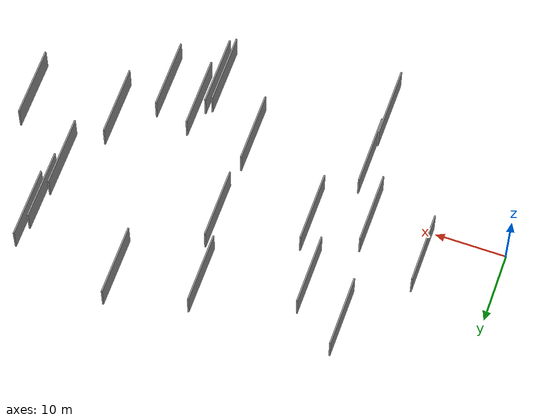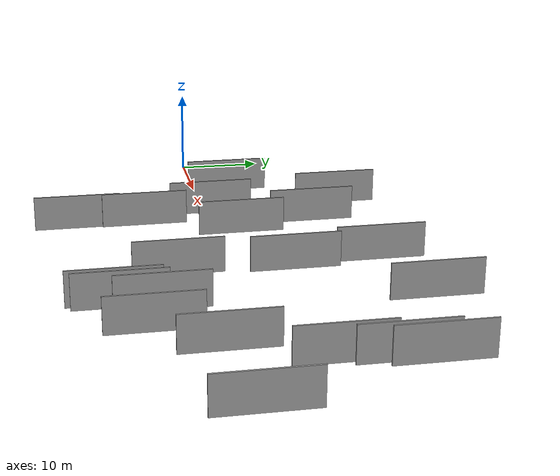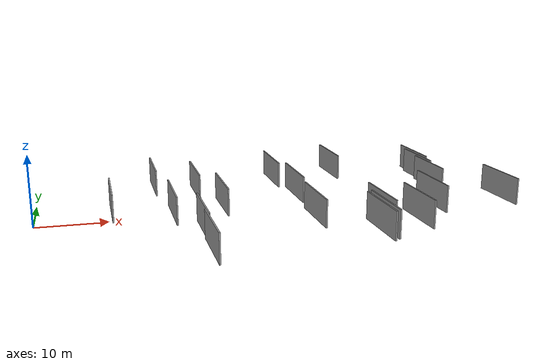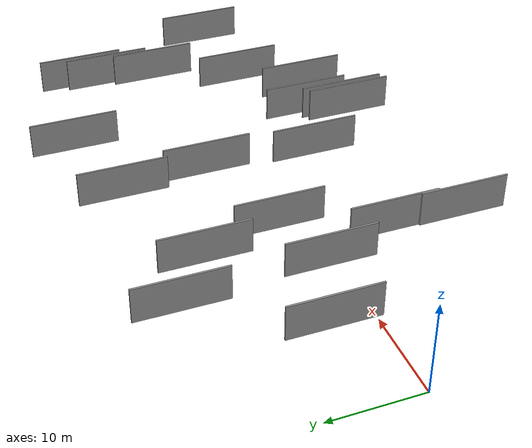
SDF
<sdf version="1.6">
 <world name="default">
  <scene>
   <sky><clouds><speed>12</speed></clouds></sky>
   <ambient>0.4 0.4 0.4 1</ambient>
   <background>0.7 0.7 0.7 1</background>
   <shadows>1</shadows>
  </scene>
  <gravity>0 0 -9.8066</gravity>
  <magnetic_field>6e-06 2.3e-05 -4.2e-05</magnetic_field>
  <physics default="0" name="default_physics" type="ode">
   <ode>
    <solver>
     <type>quick</type>
     <iters>10</iters>
     <sor>1.0</sor>
     <use_dynamic_moi_rescaling>0</use_dynamic_moi_rescaling>
    </solver>
    <constraints>
     <cfm>0</cfm>
     <erp>0.2</erp>
     <contact_max_correcting_vel>100</contact_max_correcting_vel>
     <contact_surface_layer>0.001</contact_surface_layer>
    </constraints>
   </ode>
   <max_step_size>0.004</max_step_size>
   <real_time_factor>1</real_time_factor>
   <real_time_update_rate>250</real_time_update_rate>
  </physics>
  <light name="sun" type="directional">
   <pose>0 0 10 0 0 0</pose>
   <diffuse>0.8 0.8 0.8 1</diffuse>
   <specular>0.2 0.2 0.2 1</specular>
   <attenuation>
    <range>1000</range>
    <constant>0.9</constant>
    <linear>0.01</linear>
    <quadratic>0.001</quadratic>
   </attenuation>
   <direction>-0.5 0.1 -0.9</direction>
  </light>
  <model name="grey_wall_1">
   <static>1</static>
   <pose>23.8907 12.3705 0.0 0.000000 0.000000 1.570796</pose>
   <link name="link">
    <pose>0 0 2.00 0 0 0</pose>
    <collision name="collision"><geometry><box><size>10.00 0.2 4.00</size></box></geometry></collision>
    <visual name="visual">
     <cast_shadows>0</cast_shadows>
     <geometry><box><size>10.00 0.2 4.00</size></box></geometry>
     <material>
      <script>
       <uri>model://grey_wall/materials/scripts</uri>
       <uri>model://grey_wall/materials/textures</uri>
       <name>vrc/grey_wall</name>
      </script>
     </material>
    </visual>
   </link>
  </model>
  <model name="grey_wall_2">
   <static>1</static>
   <pose>38.1678 -5.4554 0.0 0.000000 0.000000 1.570796</pose>
   <link name="link">
    <pose>0 0 2.00 0 0 0</pose>
    <collision name="collision"><geometry><box><size>10.00 0.2 4.00</size></box></geometry></collision>
    <visual name="visual">
     <cast_shadows>0</cast_shadows>
     <geometry><box><size>10.00 0.2 4.00</size></box></geometry>
     <material>
      <script>
       <uri>model://grey_wall/materials/scripts</uri>
       <uri>model://grey_wall/materials/textures</uri>
       <name>vrc/grey_wall</name>
      </script>
     </material>
    </visual>
   </link>
  </model>
  <model name="grey_wall_3">
   <static>1</static>
   <pose>45.8196 -12.2393 0.0 0.000000 0.000000 1.570796</pose>
   <link name="link">
    <pose>0 0 2.00 0 0 0</pose>
    <collision name="collision"><geometry><box><size>10.00 0.2 4.00</size></box></geometry></collision>
    <visual name="visual">
     <cast_shadows>0</cast_shadows>
     <geometry><box><size>10.00 0.2 4.00</size></box></geometry>
     <material>
      <script>
       <uri>model://grey_wall/materials/scripts</uri>
       <uri>model://grey_wall/materials/textures</uri>
       <name>vrc/grey_wall</name>
      </script>
     </material>
    </visual>
   </link>
  </model>
  <model name="grey_wall_4">
   <static>1</static>
   <pose>52.0283 -9.4851 0.0 0.000000 0.000000 1.570796</pose>
   <link name="link">
    <pose>0 0 2.00 0 0 0</pose>
    <collision name="collision"><geometry><box><size>10.00 0.2 4.00</size></box></geometry></collision>
    <visual name="visual">
     <cast_shadows>0</cast_shadows>
     <geometry><box><size>10.00 0.2 4.00</size></box></geometry>
     <material>
      <script>
       <uri>model://grey_wall/materials/scripts</uri>
       <uri>model://grey_wall/materials/textures</uri>
       <name>vrc/grey_wall</name>
      </script>
     </material>
    </visual>
   </link>
  </model>
  <model name="grey_wall_5">
   <static>1</static>
   <pose>18.9541 0.8942 0.0 0.000000 0.000000 1.570796</pose>
   <link name="link">
    <pose>0 0 2.00 0 0 0</pose>
    <collision name="collision"><geometry><box><size>10.00 0.2 4.00</size></box></geometry></collision>
    <visual name="visual">
     <cast_shadows>0</cast_shadows>
     <geometry><box><size>10.00 0.2 4.00</size></box></geometry>
     <material>
      <script>
       <uri>model://grey_wall/materials/scripts</uri>
       <uri>model://grey_wall/materials/textures</uri>
       <name>vrc/grey_wall</name>
      </script>
     </material>
    </visual>
   </link>
  </model>
  <model name="grey_wall_6">
   <static>1</static>
   <pose>57.2342 -3.0763 0.0 0.000000 0.000000 1.570796</pose>
   <link name="link">
    <pose>0 0 2.00 0 0 0</pose>
    <collision name="collision"><geometry><box><size>10.00 0.2 4.00</size></box></geometry></collision>
    <visual name="visual">
     <cast_shadows>0</cast_shadows>
     <geometry><box><size>10.00 0.2 4.00</size></box></geometry>
     <material>
      <script>
       <uri>model://grey_wall/materials/scripts</uri>
       <uri>model://grey_wall/materials/textures</uri>
       <name>vrc/grey_wall</name>
      </script>
     </material>
    </visual>
   </link>
  </model>
  <model name="grey_wall_7">
   <static>1</static>
   <pose>45.0174 -12.7938 0.0 0.000000 0.000000 1.570796</pose>
   <link name="link">
    <pose>0 0 2.00 0 0 0</pose>
    <collision name="collision"><geometry><box><size>10.00 0.2 4.00</size></box></geometry></collision>
    <visual name="visual">
     <cast_shadows>0</cast_shadows>
     <geometry><box><size>10.00 0.2 4.00</size></box></geometry>
     <material>
      <script>
       <uri>model://grey_wall/materials/scripts</uri>
       <uri>model://grey_wall/materials/textures</uri>
       <name>vrc/grey_wall</name>
      </script>
     </material>
    </visual>
   </link>
  </model>
  <model name="grey_wall_8">
   <static>1</static>
   <pose>47.0520 -8.1262 0.0 0.000000 0.000000 1.570796</pose>
   <link name="link">
    <pose>0 0 2.00 0 0 0</pose>
    <collision name="collision"><geometry><box><size>10.00 0.2 4.00</size></box></geometry></collision>
    <visual name="visual">
     <cast_shadows>0</cast_shadows>
     <geometry><box><size>10.00 0.2 4.00</size></box></geometry>
     <material>
      <script>
       <uri>model://grey_wall/materials/scripts</uri>
       <uri>model://grey_wall/materials/textures</uri>
       <name>vrc/grey_wall</name>
      </script>
     </material>
    </visual>
   </link>
  </model>
  <model name="grey_wall_9">
   <static>1</static>
   <pose>69.2798 -1.9915 0.0 0.000000 0.000000 1.570796</pose>
   <link name="link">
    <pose>0 0 2.00 0 0 0</pose>
    <collision name="collision"><geometry><box><size>10.00 0.2 4.00</size></box></geometry></collision>
    <visual name="visual">
     <cast_shadows>0</cast_shadows>
     <geometry><box><size>10.00 0.2 4.00</size></box></geometry>
     <material>
      <script>
       <uri>model://grey_wall/materials/scripts</uri>
       <uri>model://grey_wall/materials/textures</uri>
       <name>vrc/grey_wall</name>
      </script>
     </material>
    </visual>
   </link>
  </model>
  <model name="grey_wall_10">
   <static>1</static>
   <pose>26.5425 3.3984 0.0 0.000000 0.000000 1.570796</pose>
   <link name="link">
    <pose>0 0 2.00 0 0 0</pose>
    <collision name="collision"><geometry><box><size>10.00 0.2 4.00</size></box></geometry></collision>
    <visual name="visual">
     <cast_shadows>0</cast_shadows>
     <geometry><box><size>10.00 0.2 4.00</size></box></geometry>
     <material>
      <script>
       <uri>model://grey_wall/materials/scripts</uri>
       <uri>model://grey_wall/materials/textures</uri>
       <name>vrc/grey_wall</name>
      </script>
     </material>
    </visual>
   </link>
  </model>
  <model name="grey_wall_11">
   <static>1</static>
   <pose>62.2012 12.4944 0.0 0.000000 0.000000 1.570796</pose>
   <link name="link">
    <pose>0 0 2.00 0 0 0</pose>
    <collision name="collision"><geometry><box><size>10.00 0.2 4.00</size></box></geometry></collision>
    <visual name="visual">
     <cast_shadows>0</cast_shadows>
     <geometry><box><size>10.00 0.2 4.00</size></box></geometry>
     <material>
      <script>
       <uri>model://grey_wall/materials/scripts</uri>
       <uri>model://grey_wall/materials/textures</uri>
       <name>vrc/grey_wall</name>
      </script>
     </material>
    </visual>
   </link>
  </model>
  <model name="grey_wall_12">
   <static>1</static>
   <pose>48.7458 19.7662 0.0 0.000000 0.000000 1.570796</pose>
   <link name="link">
    <pose>0 0 2.00 0 0 0</pose>
    <collision name="collision"><geometry><box><size>10.00 0.2 4.00</size></box></geometry></collision>
    <visual name="visual">
     <cast_shadows>0</cast_shadows>
     <geometry><box><size>10.00 0.2 4.00</size></box></geometry>
     <material>
      <script>
       <uri>model://grey_wall/materials/scripts</uri>
       <uri>model://grey_wall/materials/textures</uri>
       <name>vrc/grey_wall</name>
      </script>
     </material>
    </visual>
   </link>
  </model>
  <model name="grey_wall_13">
   <static>1</static>
   <pose>17.7763 16.7626 0.0 0.000000 0.000000 1.570796</pose>
   <link name="link">
    <pose>0 0 2.00 0 0 0</pose>
    <collision name="collision"><geometry><box><size>10.00 0.2 4.00</size></box></geometry></collision>
    <visual name="visual">
     <cast_shadows>0</cast_shadows>
     <geometry><box><size>10.00 0.2 4.00</size></box></geometry>
     <material>
      <script>
       <uri>model://grey_wall/materials/scripts</uri>
       <uri>model://grey_wall/materials/textures</uri>
       <name>vrc/grey_wall</name>
      </script>
     </material>
    </visual>
   </link>
  </model>
  <model name="grey_wall_14">
   <static>1</static>
   <pose>62.9696 15.6375 0.0 0.000000 0.000000 1.570796</pose>
   <link name="link">
    <pose>0 0 2.00 0 0 0</pose>
    <collision name="collision"><geometry><box><size>10.00 0.2 4.00</size></box></geometry></collision>
    <visual name="visual">
     <cast_shadows>0</cast_shadows>
     <geometry><box><size>10.00 0.2 4.00</size></box></geometry>
     <material>
      <script>
       <uri>model://grey_wall/materials/scripts</uri>
       <uri>model://grey_wall/materials/textures</uri>
       <name>vrc/grey_wall</name>
      </script>
     </material>
    </visual>
   </link>
  </model>
  <model name="grey_wall_15">
   <static>1</static>
   <pose>21.9398 -7.4894 0.0 0.000000 0.000000 1.570796</pose>
   <link name="link">
    <pose>0 0 2.00 0 0 0</pose>
    <collision name="collision"><geometry><box><size>10.00 0.2 4.00</size></box></geometry></collision>
    <visual name="visual">
     <cast_shadows>0</cast_shadows>
     <geometry><box><size>10.00 0.2 4.00</size></box></geometry>
     <material>
      <script>
       <uri>model://grey_wall/materials/scripts</uri>
       <uri>model://grey_wall/materials/textures</uri>
       <name>vrc/grey_wall</name>
      </script>
     </material>
    </visual>
   </link>
  </model>
  <model name="grey_wall_16">
   <static>1</static>
   <pose>37.5809 17.0366 0.0 0.000000 0.000000 1.570796</pose>
   <link name="link">
    <pose>0 0 2.00 0 0 0</pose>
    <collision name="collision"><geometry><box><size>10.00 0.2 4.00</size></box></geometry></collision>
    <visual name="visual">
     <cast_shadows>0</cast_shadows>
     <geometry><box><size>10.00 0.2 4.00</size></box></geometry>
     <material>
      <script>
       <uri>model://grey_wall/materials/scripts</uri>
       <uri>model://grey_wall/materials/textures</uri>
       <name>vrc/grey_wall</name>
      </script>
     </material>
    </visual>
   </link>
  </model>
  <model name="grey_wall_17">
   <static>1</static>
   <pose>38.7890 7.1832 0.0 0.000000 0.000000 1.570796</pose>
   <link name="link">
    <pose>0 0 2.00 0 0 0</pose>
    <collision name="collision"><geometry><box><size>10.00 0.2 4.00</size></box></geometry></collision>
    <visual name="visual">
     <cast_shadows>0</cast_shadows>
     <geometry><box><size>10.00 0.2 4.00</size></box></geometry>
     <material>
      <script>
       <uri>model://grey_wall/materials/scripts</uri>
       <uri>model://grey_wall/materials/textures</uri>
       <name>vrc/grey_wall</name>
      </script>
     </material>
    </visual>
   </link>
  </model>
  <model name="grey_wall_18">
   <static>1</static>
   <pose>10.5348 4.2636 0.0 0.000000 0.000000 1.570796</pose>
   <link name="link">
    <pose>0 0 2.00 0 0 0</pose>
    <collision name="collision"><geometry><box><size>10.00 0.2 4.00</size></box></geometry></collision>
    <visual name="visual">
     <cast_shadows>0</cast_shadows>
     <geometry><box><size>10.00 0.2 4.00</size></box></geometry>
     <material>
      <script>
       <uri>model://grey_wall/materials/scripts</uri>
       <uri>model://grey_wall/materials/textures</uri>
       <name>vrc/grey_wall</name>
      </script>
     </material>
    </visual>
   </link>
  </model>
  <model name="grey_wall_19">
   <static>1</static>
   <pose>21.7387 -15.3866 0.0 0.000000 0.000000 1.570796</pose>
   <link name="link">
    <pose>0 0 2.00 0 0 0</pose>
    <collision name="collision"><geometry><box><size>10.00 0.2 4.00</size></box></geometry></collision>
    <visual name="visual">
     <cast_shadows>0</cast_shadows>
     <geometry><box><size>10.00 0.2 4.00</size></box></geometry>
     <material>
      <script>
       <uri>model://grey_wall/materials/scripts</uri>
       <uri>model://grey_wall/materials/textures</uri>
       <name>vrc/grey_wall</name>
      </script>
     </material>
    </visual>
   </link>
  </model>
  <model name="grey_wall_20">
   <static>1</static>
   <pose>61.5063 6.7675 0.0 0.000000 0.000000 1.570796</pose>
   <link name="link">
    <pose>0 0 2.00 0 0 0</pose>
    <collision name="collision"><geometry><box><size>10.00 0.2 4.00</size></box></geometry></collision>
    <visual name="visual">
     <cast_shadows>0</cast_shadows>
     <geometry><box><size>10.00 0.2 4.00</size></box></geometry>
     <material>
      <script>
       <uri>model://grey_wall/materials/scripts</uri>
       <uri>model://grey_wall/materials/textures</uri>
       <name>vrc/grey_wall</name>
      </script>
     </material>
    </visual>
   </link>
  </model>
 </world>
</sdf>
